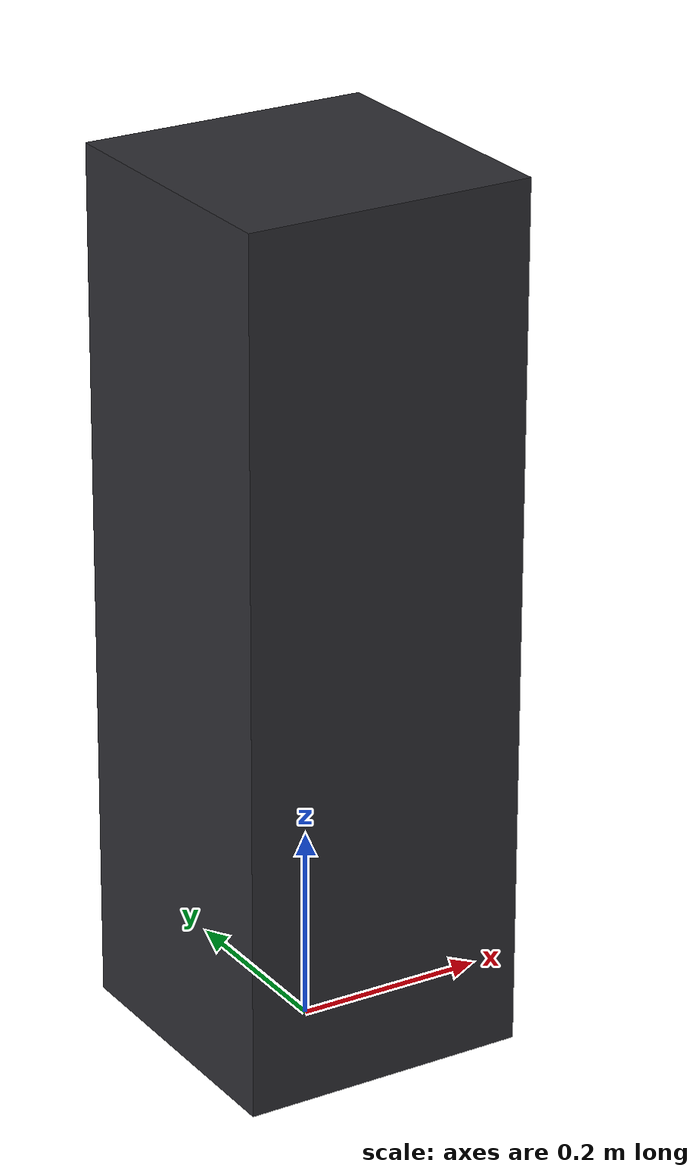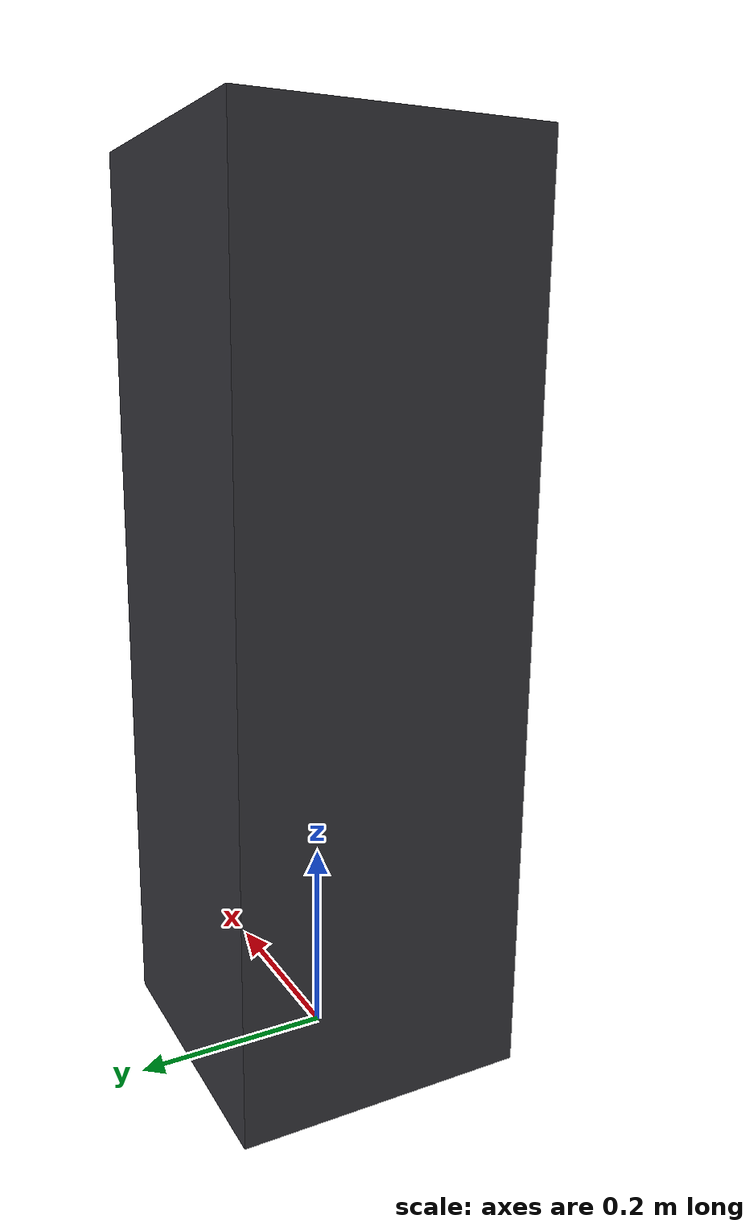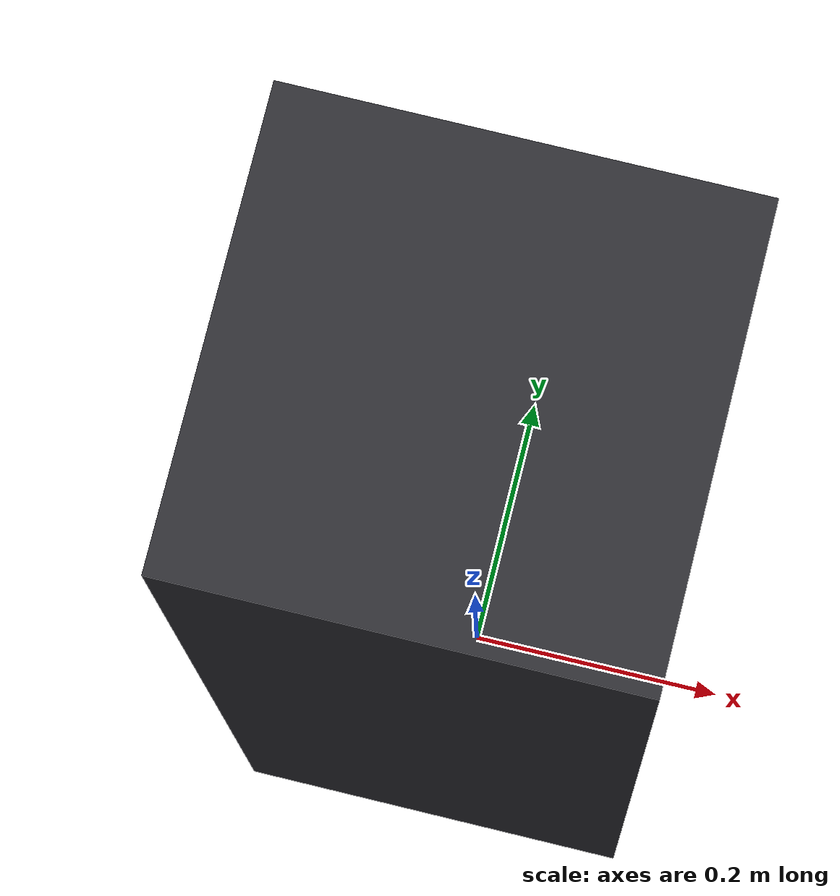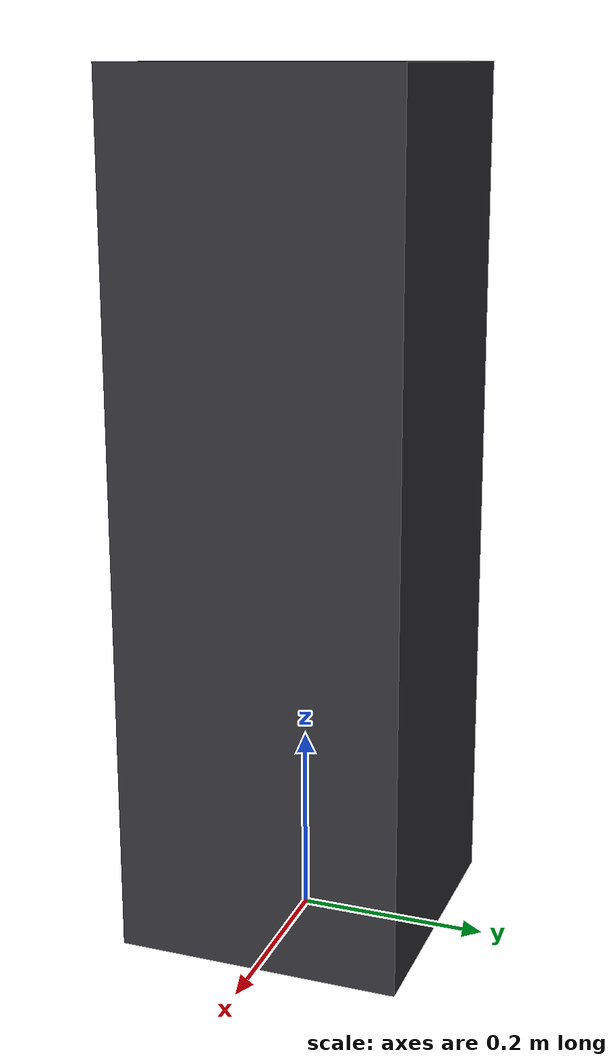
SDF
<?xml version="1.0" ?>
<sdf version="1.9">
  <model name="arm_pedestal">
    <static>true</static>
    <link name="pedestal_link">
      <visual name="pedestal_visual">
        <pose>0 0 0.45 0 0 0</pose>
        <geometry><box><size>0.30 0.30 0.90</size></box></geometry>
        <material>
          <ambient>0.08 0.08 0.09 1</ambient>
          <diffuse>0.18 0.18 0.20 1</diffuse>
          <specular>0.1 0.1 0.1 1</specular>
        </material>
      </visual>
      <collision name="pedestal_collision">
        <pose>0 0 0.45 0 0 0</pose>
        <geometry><box><size>0.30 0.30 0.90</size></box></geometry>
        <surface><friction><ode><mu>1.0</mu><mu2>1.0</mu2></ode></friction></surface>
      </collision>
    </link>
  </model>
</sdf>
